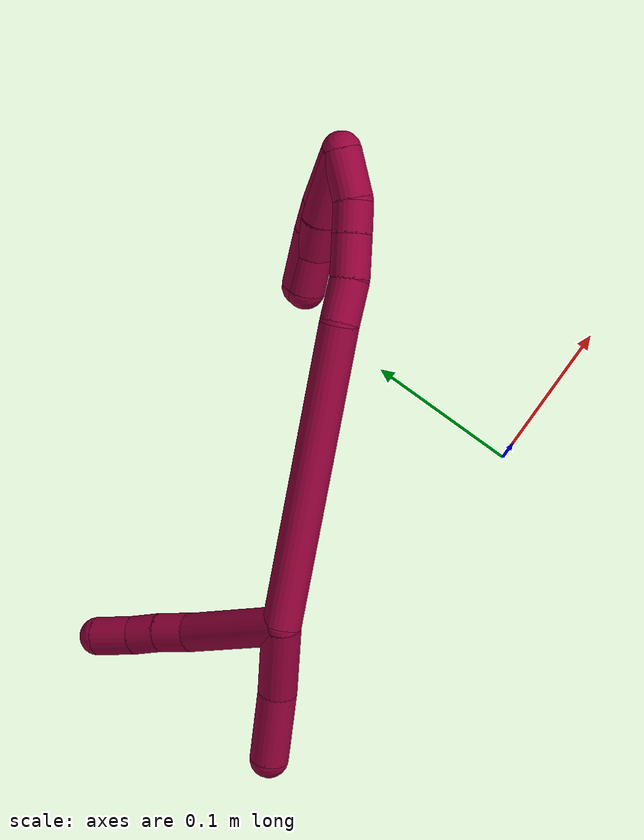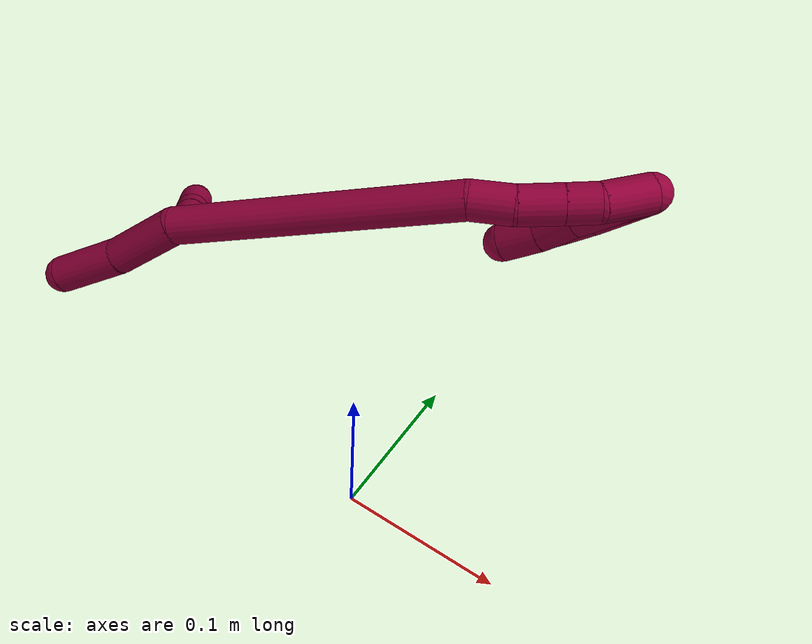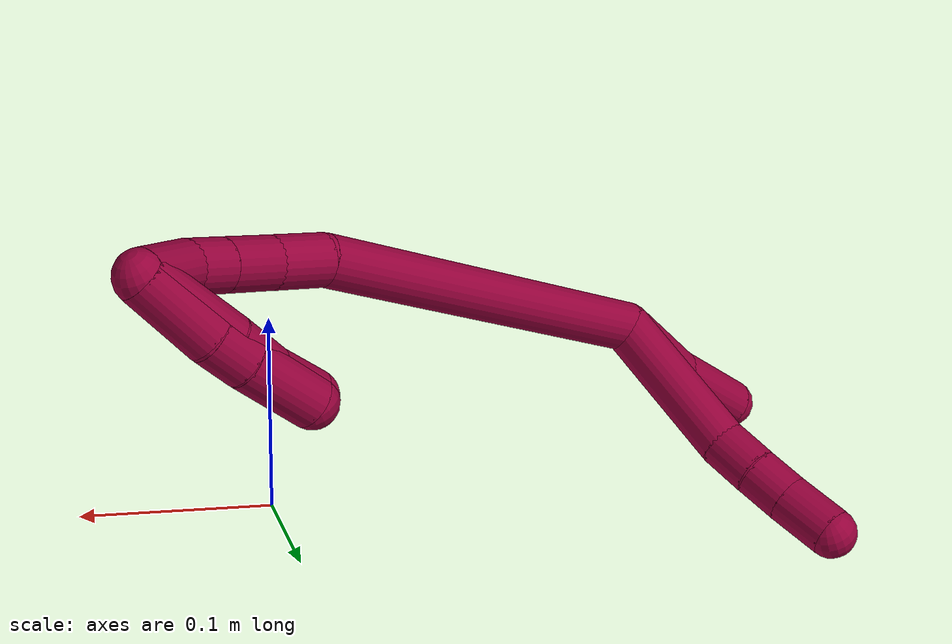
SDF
<sdf version="1.7">
 <world name="default">
  <model name="8">
   <static>0</static>
   <link name="8">
    <collision name="collision-cylinder-e_1_2_8">
     <pose>0.006019 0.032276 -0.021368 -2.15558 0.154264 -0.285745</pose>
     <geometry><cylinder><radius>0.0125</radius><length>0.078347</length></cylinder></geometry>
     <surface>
      <friction><ode><mu>1.16</mu><mu2>1.16</mu2><slip1>0</slip1><slip2>0</slip2></ode></friction>
      <contact><ode><kp>1e+06</kp><kd>1</kd><max_vel>0</max_vel><min_depth>0.001</min_depth></ode></contact>
     </surface>
    </collision>
    <visual name="visual-cylinder-e_1_2_8">
     <pose>0.006019 0.032276 -0.021368 -2.15558 0.154264 -0.285745</pose>
     <geometry><cylinder><radius>0.0125</radius><length>0.078347</length></cylinder></geometry>
     <material><ambient>0.584314 0 0.227451 1</ambient></material>
    </visual>
    <collision name="collision-cylinder-e_2_8_9">
     <pose>0.012983 0.075272 -0.047091 -1.95673 0.081447 -0.120924</pose>
     <geometry><cylinder><radius>0.0125</radius><length>0.023219</length></cylinder></geometry>
     <surface>
      <friction><ode><mu>1.16</mu><mu2>1.16</mu2><slip1>0</slip1><slip2>0</slip2></ode></friction>
      <contact><ode><kp>1e+06</kp><kd>1</kd><max_vel>0</max_vel><min_depth>0.001</min_depth></ode></contact>
     </surface>
    </collision>
    <visual name="visual-cylinder-e_2_8_9">
     <pose>0.012983 0.075272 -0.047091 -1.95673 0.081447 -0.120924</pose>
     <geometry><cylinder><radius>0.0125</radius><length>0.023219</length></cylinder></geometry>
     <material><ambient>0.584314 0 0.227451 1</ambient></material>
    </visual>
    <collision name="collision-cylinder-e_3_9_10">
     <pose>0.014202 0.09529 -0.055949 -2.02178 0.026593 -0.042421</pose>
     <geometry><cylinder><radius>0.0125</radius><length>0.020669</length></cylinder></geometry>
     <surface>
      <friction><ode><mu>1.16</mu><mu2>1.16</mu2><slip1>0</slip1><slip2>0</slip2></ode></friction>
      <contact><ode><kp>1e+06</kp><kd>1</kd><max_vel>0</max_vel><min_depth>0.001</min_depth></ode></contact>
     </surface>
    </collision>
    <visual name="visual-cylinder-e_3_9_10">
     <pose>0.014202 0.09529 -0.055949 -2.02178 0.026593 -0.042421</pose>
     <geometry><cylinder><radius>0.0125</radius><length>0.020669</length></cylinder></geometry>
     <material><ambient>0.584314 0 0.227451 1</ambient></material>
    </visual>
    <collision name="collision-cylinder-e_4_10_6">
     <pose>0.014915 0.11759 -0.065298 -1.92757 0.031591 -0.045484</pose>
     <geometry><cylinder><radius>0.0125</radius><length>0.027765</length></cylinder></geometry>
     <surface>
      <friction><ode><mu>1.16</mu><mu2>1.16</mu2><slip1>0</slip1><slip2>0</slip2></ode></friction>
      <contact><ode><kp>1e+06</kp><kd>1</kd><max_vel>0</max_vel><min_depth>0.001</min_depth></ode></contact>
     </surface>
    </collision>
    <visual name="visual-cylinder-e_4_10_6">
     <pose>0.014915 0.11759 -0.065298 -1.92757 0.031591 -0.045484</pose>
     <geometry><cylinder><radius>0.0125</radius><length>0.027765</length></cylinder></geometry>
     <material><ambient>0.584314 0 0.227451 1</ambient></material>
    </visual>
    <collision name="collision-cylinder-e_1_2_11">
     <pose>-0.009395 0.000637 -0.023517 -3.11449 -0.379944 3.00088</pose>
     <geometry><cylinder><radius>0.0125</radius><length>0.050664</length></cylinder></geometry>
     <surface>
      <friction><ode><mu>1.16</mu><mu2>1.16</mu2><slip1>0</slip1><slip2>0</slip2></ode></friction>
      <contact><ode><kp>1e+06</kp><kd>1</kd><max_vel>0</max_vel><min_depth>0.001</min_depth></ode></contact>
     </surface>
    </collision>
    <visual name="visual-cylinder-e_1_2_11">
     <pose>-0.009395 0.000637 -0.023517 -3.11449 -0.379944 3.00088</pose>
     <geometry><cylinder><radius>0.0125</radius><length>0.050664</length></cylinder></geometry>
     <material><ambient>0.584314 0 0.227451 1</ambient></material>
    </visual>
    <collision name="collision-cylinder-e_2_11_5">
     <pose>-0.031194 0.002559 -0.068317 -3.08133 -0.526896 2.91901</pose>
     <geometry><cylinder><radius>0.0125</radius><length>0.049336</length></cylinder></geometry>
     <surface>
      <friction><ode><mu>1.16</mu><mu2>1.16</mu2><slip1>0</slip1><slip2>0</slip2></ode></friction>
      <contact><ode><kp>1e+06</kp><kd>1</kd><max_vel>0</max_vel><min_depth>0.001</min_depth></ode></contact>
     </surface>
    </collision>
    <visual name="visual-cylinder-e_2_11_5">
     <pose>-0.031194 0.002559 -0.068317 -3.08133 -0.526896 2.91901</pose>
     <geometry><cylinder><radius>0.0125</radius><length>0.049336</length></cylinder></geometry>
     <material><ambient>0.584314 0 0.227451 1</ambient></material>
    </visual>
    <collision name="collision-cylinder-e_1_2_12">
     <pose>0.065434 -0.007619 0.070369 0.107851 0.746168 0.042249</pose>
     <geometry><cylinder><radius>0.0125</radius><length>0.192784</length></cylinder></geometry>
     <surface>
      <friction><ode><mu>1.16</mu><mu2>1.16</mu2><slip1>0</slip1><slip2>0</slip2></ode></friction>
      <contact><ode><kp>1e+06</kp><kd>1</kd><max_vel>0</max_vel><min_depth>0.001</min_depth></ode></contact>
     </surface>
    </collision>
    <visual name="visual-cylinder-e_1_2_12">
     <pose>0.065434 -0.007619 0.070369 0.107851 0.746168 0.042249</pose>
     <geometry><cylinder><radius>0.0125</radius><length>0.192784</length></cylinder></geometry>
     <material><ambient>0.584314 0 0.227451 1</ambient></material>
    </visual>
    <collision name="collision-cylinder-e_2_12_13">
     <pose>0.142283 -0.016373 0.148351 0.147987 0.977538 0.078804</pose>
     <geometry><cylinder><radius>0.0125</radius><length>0.027537</length></cylinder></geometry>
     <surface>
      <friction><ode><mu>1.16</mu><mu2>1.16</mu2><slip1>0</slip1><slip2>0</slip2></ode></friction>
      <contact><ode><kp>1e+06</kp><kd>1</kd><max_vel>0</max_vel><min_depth>0.001</min_depth></ode></contact>
     </surface>
    </collision>
    <visual name="visual-cylinder-e_2_12_13">
     <pose>0.142283 -0.016373 0.148351 0.147987 0.977538 0.078804</pose>
     <geometry><cylinder><radius>0.0125</radius><length>0.027537</length></cylinder></geometry>
     <material><ambient>0.584314 0 0.227451 1</ambient></material>
    </visual>
    <collision name="collision-cylinder-e_3_13_14">
     <pose>0.164699 -0.016289 0.164235 -0.14636 0.920952 -0.072698</pose>
     <geometry><cylinder><radius>0.0125</radius><length>0.027632</length></cylinder></geometry>
     <surface>
      <friction><ode><mu>1.16</mu><mu2>1.16</mu2><slip1>0</slip1><slip2>0</slip2></ode></friction>
      <contact><ode><kp>1e+06</kp><kd>1</kd><max_vel>0</max_vel><min_depth>0.001</min_depth></ode></contact>
     </surface>
    </collision>
    <visual name="visual-cylinder-e_3_13_14">
     <pose>0.164699 -0.016289 0.164235 -0.14636 0.920952 -0.072698</pose>
     <geometry><cylinder><radius>0.0125</radius><length>0.027632</length></cylinder></geometry>
     <material><ambient>0.584314 0 0.227451 1</ambient></material>
    </visual>
    <collision name="collision-cylinder-e_4_14_15">
     <pose>0.18376 -0.014063 0.178597 -0.163759 0.91713 -0.080979</pose>
     <geometry><cylinder><radius>0.0125</radius><length>0.020308</length></cylinder></geometry>
     <surface>
      <friction><ode><mu>1.16</mu><mu2>1.16</mu2><slip1>0</slip1><slip2>0</slip2></ode></friction>
      <contact><ode><kp>1e+06</kp><kd>1</kd><max_vel>0</max_vel><min_depth>0.001</min_depth></ode></contact>
     </surface>
    </collision>
    <visual name="visual-cylinder-e_4_14_15">
     <pose>0.18376 -0.014063 0.178597 -0.163759 0.91713 -0.080979</pose>
     <geometry><cylinder><radius>0.0125</radius><length>0.020308</length></cylinder></geometry>
     <material><ambient>0.584314 0 0.227451 1</ambient></material>
    </visual>
    <collision name="collision-cylinder-e_5_15_1">
     <pose>0.203727 -0.007236 0.193418 -0.588077 0.84849 -0.271861</pose>
     <geometry><cylinder><radius>0.0125</radius><length>0.031739</length></cylinder></geometry>
     <surface>
      <friction><ode><mu>1.16</mu><mu2>1.16</mu2><slip1>0</slip1><slip2>0</slip2></ode></friction>
      <contact><ode><kp>1e+06</kp><kd>1</kd><max_vel>0</max_vel><min_depth>0.001</min_depth></ode></contact>
     </surface>
    </collision>
    <visual name="visual-cylinder-e_5_15_1">
     <pose>0.203727 -0.007236 0.193418 -0.588077 0.84849 -0.271861</pose>
     <geometry><cylinder><radius>0.0125</radius><length>0.031739</length></cylinder></geometry>
     <material><ambient>0.584314 0 0.227451 1</ambient></material>
    </visual>
    <collision name="collision-cylinder-e_1_1_16">
     <pose>0.210553 0.004394 0.183491 -2.83971 -0.254377 1.39821</pose>
     <geometry><cylinder><radius>0.0125</radius><length>0.04038</length></cylinder></geometry>
     <surface>
      <friction><ode><mu>1.16</mu><mu2>1.16</mu2><slip1>0</slip1><slip2>0</slip2></ode></friction>
      <contact><ode><kp>1e+06</kp><kd>1</kd><max_vel>0</max_vel><min_depth>0.001</min_depth></ode></contact>
     </surface>
    </collision>
    <visual name="visual-cylinder-e_1_1_16">
     <pose>0.210553 0.004394 0.183491 -2.83971 -0.254377 1.39821</pose>
     <geometry><cylinder><radius>0.0125</radius><length>0.04038</length></cylinder></geometry>
     <material><ambient>0.584314 0 0.227451 1</ambient></material>
    </visual>
    <collision name="collision-cylinder-e_2_16_17">
     <pose>0.201798 0.012411 0.155533 -2.9086 -0.366968 2.01633</pose>
     <geometry><cylinder><radius>0.0125</radius><length>0.020481</length></cylinder></geometry>
     <surface>
      <friction><ode><mu>1.16</mu><mu2>1.16</mu2><slip1>0</slip1><slip2>0</slip2></ode></friction>
      <contact><ode><kp>1e+06</kp><kd>1</kd><max_vel>0</max_vel><min_depth>0.001</min_depth></ode></contact>
     </surface>
    </collision>
    <visual name="visual-cylinder-e_2_16_17">
     <pose>0.201798 0.012411 0.155533 -2.9086 -0.366968 2.01633</pose>
     <geometry><cylinder><radius>0.0125</radius><length>0.020481</length></cylinder></geometry>
     <material><ambient>0.584314 0 0.227451 1</ambient></material>
    </visual>
    <collision name="collision-cylinder-e_3_17_4">
     <pose>0.189897 0.017869 0.128777 -2.95747 -0.433876 2.34823</pose>
     <geometry><cylinder><radius>0.0125</radius><length>0.039138</length></cylinder></geometry>
     <surface>
      <friction><ode><mu>1.16</mu><mu2>1.16</mu2><slip1>0</slip1><slip2>0</slip2></ode></friction>
      <contact><ode><kp>1e+06</kp><kd>1</kd><max_vel>0</max_vel><min_depth>0.001</min_depth></ode></contact>
     </surface>
    </collision>
    <visual name="visual-cylinder-e_3_17_4">
     <pose>0.189897 0.017869 0.128777 -2.95747 -0.433876 2.34823</pose>
     <geometry><cylinder><radius>0.0125</radius><length>0.039138</length></cylinder></geometry>
     <material><ambient>0.584314 0 0.227451 1</ambient></material>
    </visual>
    <collision name="collision-cylinder-e_1_1_18">
     <pose>0.207122 0.004365 0.179565 -2.891 -0.350122 1.90396</pose>
     <geometry><cylinder><radius>0.0125</radius><length>0.049632</length></cylinder></geometry>
     <surface>
      <friction><ode><mu>1.16</mu><mu2>1.16</mu2><slip1>0</slip1><slip2>0</slip2></ode></friction>
      <contact><ode><kp>1e+06</kp><kd>1</kd><max_vel>0</max_vel><min_depth>0.001</min_depth></ode></contact>
     </surface>
    </collision>
    <visual name="visual-cylinder-e_1_1_18">
     <pose>0.207122 0.004365 0.179565 -2.891 -0.350122 1.90396</pose>
     <geometry><cylinder><radius>0.0125</radius><length>0.049632</length></cylinder></geometry>
     <material><ambient>0.584314 0 0.227451 1</ambient></material>
    </visual>
    <collision name="collision-cylinder-e_2_18_19">
     <pose>0.194635 0.012143 0.145297 -2.97228 -0.32345 2.18234</pose>
     <geometry><cylinder><radius>0.0125</radius><length>0.025008</length></cylinder></geometry>
     <surface>
      <friction><ode><mu>1.16</mu><mu2>1.16</mu2><slip1>0</slip1><slip2>0</slip2></ode></friction>
      <contact><ode><kp>1e+06</kp><kd>1</kd><max_vel>0</max_vel><min_depth>0.001</min_depth></ode></contact>
     </surface>
    </collision>
    <visual name="visual-cylinder-e_2_18_19">
     <pose>0.194635 0.012143 0.145297 -2.97228 -0.32345 2.18234</pose>
     <geometry><cylinder><radius>0.0125</radius><length>0.025008</length></cylinder></geometry>
     <material><ambient>0.584314 0 0.227451 1</ambient></material>
    </visual>
    <collision name="collision-cylinder-e_3_19_3">
     <pose>0.184935 0.016037 0.122457 -2.97317 -0.468506 2.46161</pose>
     <geometry><cylinder><radius>0.0125</radius><length>0.02536</length></cylinder></geometry>
     <surface>
      <friction><ode><mu>1.16</mu><mu2>1.16</mu2><slip1>0</slip1><slip2>0</slip2></ode></friction>
      <contact><ode><kp>1e+06</kp><kd>1</kd><max_vel>0</max_vel><min_depth>0.001</min_depth></ode></contact>
     </surface>
    </collision>
    <visual name="visual-cylinder-e_3_19_3">
     <pose>0.184935 0.016037 0.122457 -2.97317 -0.468506 2.46161</pose>
     <geometry><cylinder><radius>0.0125</radius><length>0.02536</length></cylinder></geometry>
     <material><ambient>0.584314 0 0.227451 1</ambient></material>
    </visual>
    <collision name="collision-sphere-3">
     <pose>0.17921 0.017934 0.111303 0 -0 0</pose>
     <geometry><sphere><radius>0.0125</radius></sphere></geometry>
     <surface>
      <friction><ode><mu>1.16</mu><mu2>1.16</mu2><slip1>0</slip1><slip2>0</slip2></ode></friction>
      <contact><ode><kp>1e+06</kp><kd>1</kd><max_vel>0</max_vel><min_depth>0.001</min_depth></ode></contact>
     </surface>
    </collision>
    <visual name="visual-sphere-3">
     <pose>0.17921 0.017934 0.111303 0 -0 0</pose>
     <geometry><sphere><radius>0.0125</radius></sphere></geometry>
     <material><ambient>0.584314 0 0.227451 1</ambient></material>
    </visual>
    <collision name="collision-sphere-19">
     <pose>0.190661 0.014141 0.133611 0 -0 0</pose>
     <geometry><sphere><radius>0.0125</radius></sphere></geometry>
     <surface>
      <friction><ode><mu>1.16</mu><mu2>1.16</mu2><slip1>0</slip1><slip2>0</slip2></ode></friction>
      <contact><ode><kp>1e+06</kp><kd>1</kd><max_vel>0</max_vel><min_depth>0.001</min_depth></ode></contact>
     </surface>
    </collision>
    <visual name="visual-sphere-19">
     <pose>0.190661 0.014141 0.133611 0 -0 0</pose>
     <geometry><sphere><radius>0.0125</radius></sphere></geometry>
     <material><ambient>0.584314 0 0.227451 1</ambient></material>
    </visual>
    <collision name="collision-sphere-11">
     <pose>-0.01879 0.001275 -0.047034 0 -0 0</pose>
     <geometry><sphere><radius>0.0125</radius></sphere></geometry>
     <surface>
      <friction><ode><mu>1.16</mu><mu2>1.16</mu2><slip1>0</slip1><slip2>0</slip2></ode></friction>
      <contact><ode><kp>1e+06</kp><kd>1</kd><max_vel>0</max_vel><min_depth>0.001</min_depth></ode></contact>
     </surface>
    </collision>
    <visual name="visual-sphere-11">
     <pose>-0.01879 0.001275 -0.047034 0 -0 0</pose>
     <geometry><sphere><radius>0.0125</radius></sphere></geometry>
     <material><ambient>0.584314 0 0.227451 1</ambient></material>
    </visual>
    <collision name="collision-sphere-6">
     <pose>0.015354 0.130592 -0.070144 0 -0 0</pose>
     <geometry><sphere><radius>0.0125</radius></sphere></geometry>
     <surface>
      <friction><ode><mu>1.16</mu><mu2>1.16</mu2><slip1>0</slip1><slip2>0</slip2></ode></friction>
      <contact><ode><kp>1e+06</kp><kd>1</kd><max_vel>0</max_vel><min_depth>0.001</min_depth></ode></contact>
     </surface>
    </collision>
    <visual name="visual-sphere-6">
     <pose>0.015354 0.130592 -0.070144 0 -0 0</pose>
     <geometry><sphere><radius>0.0125</radius></sphere></geometry>
     <material><ambient>0.584314 0 0.227451 1</ambient></material>
    </visual>
    <collision name="collision-sphere-10">
     <pose>0.014477 0.104588 -0.060452 0 -0 0</pose>
     <geometry><sphere><radius>0.0125</radius></sphere></geometry>
     <surface>
      <friction><ode><mu>1.16</mu><mu2>1.16</mu2><slip1>0</slip1><slip2>0</slip2></ode></friction>
      <contact><ode><kp>1e+06</kp><kd>1</kd><max_vel>0</max_vel><min_depth>0.001</min_depth></ode></contact>
     </surface>
    </collision>
    <visual name="visual-sphere-10">
     <pose>0.014477 0.104588 -0.060452 0 -0 0</pose>
     <geometry><sphere><radius>0.0125</radius></sphere></geometry>
     <material><ambient>0.584314 0 0.227451 1</ambient></material>
    </visual>
    <collision name="collision-sphere-9">
     <pose>0.013927 0.085992 -0.051447 0 -0 0</pose>
     <geometry><sphere><radius>0.0125</radius></sphere></geometry>
     <surface>
      <friction><ode><mu>1.16</mu><mu2>1.16</mu2><slip1>0</slip1><slip2>0</slip2></ode></friction>
      <contact><ode><kp>1e+06</kp><kd>1</kd><max_vel>0</max_vel><min_depth>0.001</min_depth></ode></contact>
     </surface>
    </collision>
    <visual name="visual-sphere-9">
     <pose>0.013927 0.085992 -0.051447 0 -0 0</pose>
     <geometry><sphere><radius>0.0125</radius></sphere></geometry>
     <material><ambient>0.584314 0 0.227451 1</ambient></material>
    </visual>
    <collision name="collision-sphere-2">
     <geometry><sphere><radius>0.0125</radius></sphere></geometry>
     <surface>
      <friction><ode><mu>1.16</mu><mu2>1.16</mu2><slip1>0</slip1><slip2>0</slip2></ode></friction>
      <contact><ode><kp>1e+06</kp><kd>1</kd><max_vel>0</max_vel><min_depth>0.001</min_depth></ode></contact>
     </surface>
    </collision>
    <visual name="visual-sphere-2">
     <geometry><sphere><radius>0.0125</radius></sphere></geometry>
     <material><ambient>0.584314 0 0.227451 1</ambient></material>
    </visual>
    <collision name="collision-sphere-8">
     <pose>0.012038 0.064552 -0.042736 0 -0 0</pose>
     <geometry><sphere><radius>0.0125</radius></sphere></geometry>
     <surface>
      <friction><ode><mu>1.16</mu><mu2>1.16</mu2><slip1>0</slip1><slip2>0</slip2></ode></friction>
      <contact><ode><kp>1e+06</kp><kd>1</kd><max_vel>0</max_vel><min_depth>0.001</min_depth></ode></contact>
     </surface>
    </collision>
    <visual name="visual-sphere-8">
     <pose>0.012038 0.064552 -0.042736 0 -0 0</pose>
     <geometry><sphere><radius>0.0125</radius></sphere></geometry>
     <material><ambient>0.584314 0 0.227451 1</ambient></material>
    </visual>
    <collision name="collision-sphere-5">
     <pose>-0.043598 0.003843 -0.089601 0 -0 0</pose>
     <geometry><sphere><radius>0.0125</radius></sphere></geometry>
     <surface>
      <friction><ode><mu>1.16</mu><mu2>1.16</mu2><slip1>0</slip1><slip2>0</slip2></ode></friction>
      <contact><ode><kp>1e+06</kp><kd>1</kd><max_vel>0</max_vel><min_depth>0.001</min_depth></ode></contact>
     </surface>
    </collision>
    <visual name="visual-sphere-5">
     <pose>-0.043598 0.003843 -0.089601 0 -0 0</pose>
     <geometry><sphere><radius>0.0125</radius></sphere></geometry>
     <material><ambient>0.584314 0 0.227451 1</ambient></material>
    </visual>
    <collision name="collision-sphere-12">
     <pose>0.130867 -0.015238 0.140738 0 -0 0</pose>
     <geometry><sphere><radius>0.0125</radius></sphere></geometry>
     <surface>
      <friction><ode><mu>1.16</mu><mu2>1.16</mu2><slip1>0</slip1><slip2>0</slip2></ode></friction>
      <contact><ode><kp>1e+06</kp><kd>1</kd><max_vel>0</max_vel><min_depth>0.001</min_depth></ode></contact>
     </surface>
    </collision>
    <visual name="visual-sphere-12">
     <pose>0.130867 -0.015238 0.140738 0 -0 0</pose>
     <geometry><sphere><radius>0.0125</radius></sphere></geometry>
     <material><ambient>0.584314 0 0.227451 1</ambient></material>
    </visual>
    <collision name="collision-sphere-13">
     <pose>0.153699 -0.017508 0.155964 0 -0 0</pose>
     <geometry><sphere><radius>0.0125</radius></sphere></geometry>
     <surface>
      <friction><ode><mu>1.16</mu><mu2>1.16</mu2><slip1>0</slip1><slip2>0</slip2></ode></friction>
      <contact><ode><kp>1e+06</kp><kd>1</kd><max_vel>0</max_vel><min_depth>0.001</min_depth></ode></contact>
     </surface>
    </collision>
    <visual name="visual-sphere-13">
     <pose>0.153699 -0.017508 0.155964 0 -0 0</pose>
     <geometry><sphere><radius>0.0125</radius></sphere></geometry>
     <material><ambient>0.584314 0 0.227451 1</ambient></material>
    </visual>
    <collision name="collision-sphere-14">
     <pose>0.175699 -0.01507 0.172505 0 -0 0</pose>
     <geometry><sphere><radius>0.0125</radius></sphere></geometry>
     <surface>
      <friction><ode><mu>1.16</mu><mu2>1.16</mu2><slip1>0</slip1><slip2>0</slip2></ode></friction>
      <contact><ode><kp>1e+06</kp><kd>1</kd><max_vel>0</max_vel><min_depth>0.001</min_depth></ode></contact>
     </surface>
    </collision>
    <visual name="visual-sphere-14">
     <pose>0.175699 -0.01507 0.172505 0 -0 0</pose>
     <geometry><sphere><radius>0.0125</radius></sphere></geometry>
     <material><ambient>0.584314 0 0.227451 1</ambient></material>
    </visual>
    <collision name="collision-sphere-15">
     <pose>0.191821 -0.013056 0.184689 0 -0 0</pose>
     <geometry><sphere><radius>0.0125</radius></sphere></geometry>
     <surface>
      <friction><ode><mu>1.16</mu><mu2>1.16</mu2><slip1>0</slip1><slip2>0</slip2></ode></friction>
      <contact><ode><kp>1e+06</kp><kd>1</kd><max_vel>0</max_vel><min_depth>0.001</min_depth></ode></contact>
     </surface>
    </collision>
    <visual name="visual-sphere-15">
     <pose>0.191821 -0.013056 0.184689 0 -0 0</pose>
     <geometry><sphere><radius>0.0125</radius></sphere></geometry>
     <material><ambient>0.584314 0 0.227451 1</ambient></material>
    </visual>
    <collision name="collision-sphere-1">
     <pose>0.215634 -0.001416 0.202147 0 -0 0</pose>
     <geometry><sphere><radius>0.0125</radius></sphere></geometry>
     <surface>
      <friction><ode><mu>1.16</mu><mu2>1.16</mu2><slip1>0</slip1><slip2>0</slip2></ode></friction>
      <contact><ode><kp>1e+06</kp><kd>1</kd><max_vel>0</max_vel><min_depth>0.001</min_depth></ode></contact>
     </surface>
    </collision>
    <visual name="visual-sphere-1">
     <pose>0.215634 -0.001416 0.202147 0 -0 0</pose>
     <geometry><sphere><radius>0.0125</radius></sphere></geometry>
     <material><ambient>0.584314 0 0.227451 1</ambient></material>
    </visual>
    <collision name="collision-sphere-18">
     <pose>0.19861 0.010145 0.156983 0 -0 0</pose>
     <geometry><sphere><radius>0.0125</radius></sphere></geometry>
     <surface>
      <friction><ode><mu>1.16</mu><mu2>1.16</mu2><slip1>0</slip1><slip2>0</slip2></ode></friction>
      <contact><ode><kp>1e+06</kp><kd>1</kd><max_vel>0</max_vel><min_depth>0.001</min_depth></ode></contact>
     </surface>
    </collision>
    <visual name="visual-sphere-18">
     <pose>0.19861 0.010145 0.156983 0 -0 0</pose>
     <geometry><sphere><radius>0.0125</radius></sphere></geometry>
     <material><ambient>0.584314 0 0.227451 1</ambient></material>
    </visual>
    <collision name="collision-sphere-16">
     <pose>0.205473 0.010204 0.164834 0 -0 0</pose>
     <geometry><sphere><radius>0.0125</radius></sphere></geometry>
     <surface>
      <friction><ode><mu>1.16</mu><mu2>1.16</mu2><slip1>0</slip1><slip2>0</slip2></ode></friction>
      <contact><ode><kp>1e+06</kp><kd>1</kd><max_vel>0</max_vel><min_depth>0.001</min_depth></ode></contact>
     </surface>
    </collision>
    <visual name="visual-sphere-16">
     <pose>0.205473 0.010204 0.164834 0 -0 0</pose>
     <geometry><sphere><radius>0.0125</radius></sphere></geometry>
     <material><ambient>0.584314 0 0.227451 1</ambient></material>
    </visual>
    <collision name="collision-sphere-17">
     <pose>0.198124 0.014618 0.146233 0 -0 0</pose>
     <geometry><sphere><radius>0.0125</radius></sphere></geometry>
     <surface>
      <friction><ode><mu>1.16</mu><mu2>1.16</mu2><slip1>0</slip1><slip2>0</slip2></ode></friction>
      <contact><ode><kp>1e+06</kp><kd>1</kd><max_vel>0</max_vel><min_depth>0.001</min_depth></ode></contact>
     </surface>
    </collision>
    <visual name="visual-sphere-17">
     <pose>0.198124 0.014618 0.146233 0 -0 0</pose>
     <geometry><sphere><radius>0.0125</radius></sphere></geometry>
     <material><ambient>0.584314 0 0.227451 1</ambient></material>
    </visual>
    <collision name="collision-sphere-4">
     <pose>0.181671 0.02112 0.111321 0 -0 0</pose>
     <geometry><sphere><radius>0.0125</radius></sphere></geometry>
     <surface>
      <friction><ode><mu>1.16</mu><mu2>1.16</mu2><slip1>0</slip1><slip2>0</slip2></ode></friction>
      <contact><ode><kp>1e+06</kp><kd>1</kd><max_vel>0</max_vel><min_depth>0.001</min_depth></ode></contact>
     </surface>
    </collision>
    <visual name="visual-sphere-4">
     <pose>0.181671 0.02112 0.111321 0 -0 0</pose>
     <geometry><sphere><radius>0.0125</radius></sphere></geometry>
     <material><ambient>0.584314 0 0.227451 1</ambient></material>
    </visual>
    <inertial>
     <pose>0.094203 0.01179 0.07059 0 -0 0</pose>
     <mass>0.75</mass>
     <inertia>
      <ixx>0.00051</ixx>
      <ixy>0</ixy>
      <ixz>0</ixz>
      <iyy>0.000676</iyy>
      <iyz>0</iyz>
      <izz>-0.000418</izz>
     </inertia>
    </inertial>
   </link>
   <pose>-0.176796 0.050348 0.098135 -0.168863 0.543142 0.383871</pose>
  </model>
 </world>
</sdf>
